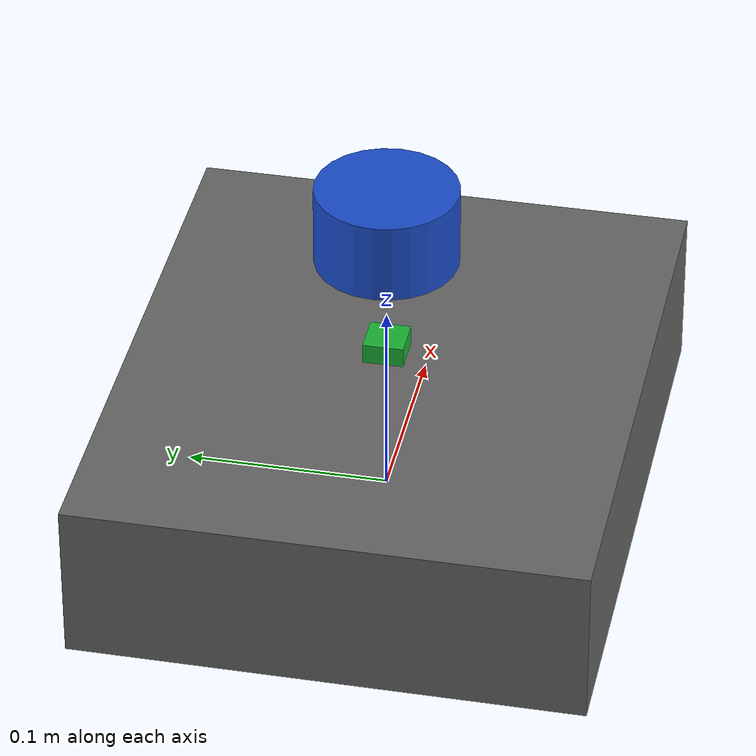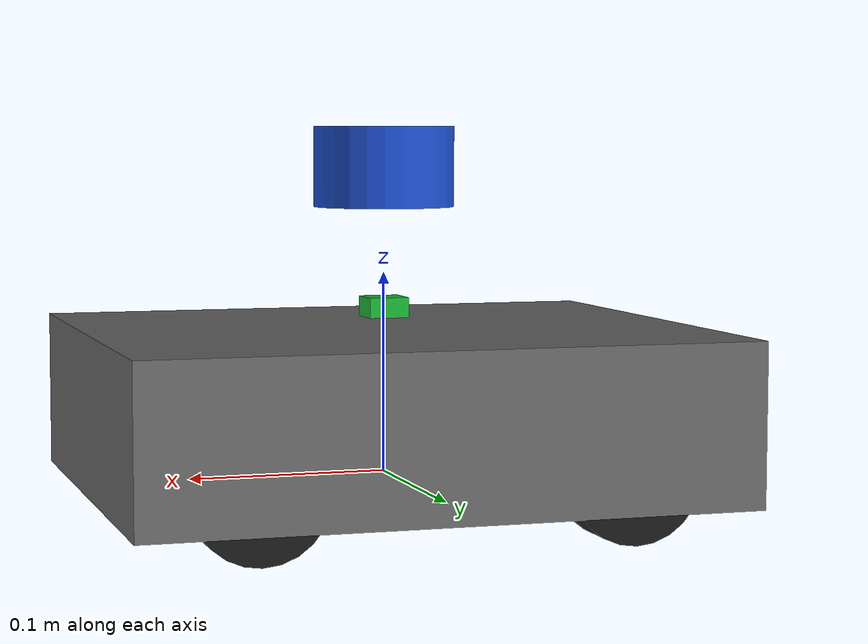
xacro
<?xml version="1.0"?>
<robot xmlns:xacro="http://www.ros.org/wiki/xacro" name="agv">

  <!-- Approximate chassis dimensions (meters) — adjust to your build -->
  <xacro:property name="base_length" value="0.30"/>
  <xacro:property name="base_width" value="0.25"/>
  <xacro:property name="base_height" value="0.08"/>
  <xacro:property name="wheel_radius" value="0.033"/>
  <xacro:property name="wheel_width" value="0.025"/>
  <xacro:property name="track_width" value="0.20"/>
  <xacro:property name="wheelbase" value="0.18"/>

  <!-- Lidar mount relative to base_link (measure on your robot) -->
  <xacro:property name="laser_x" value="0.0"/>
  <xacro:property name="laser_y" value="0.0"/>
  <xacro:property name="laser_z" value="0.12"/>
  <xacro:property name="laser_yaw" value="0.0"/>

  <!-- BNO055 mount relative to base_link -->
  <xacro:property name="imu_x" value="0.0"/>
  <xacro:property name="imu_y" value="0.0"/>
  <xacro:property name="imu_z" value="0.05"/>

  <link name="base_footprint"/>

  <joint name="base_joint" type="fixed">
    <parent link="base_footprint"/>
    <child link="base_link"/>
    <origin xyz="0 0 ${wheel_radius}" rpy="0 0 0"/>
  </joint>

  <link name="base_link">
    <visual>
      <origin xyz="0 0 0" rpy="0 0 0"/>
      <geometry>
        <box size="${base_length} ${base_width} ${base_height}"/>
      </geometry>
      <material name="grey">
        <color rgba="0.4 0.4 0.4 1.0"/>
      </material>
    </visual>
    <collision>
      <origin xyz="0 0 0" rpy="0 0 0"/>
      <geometry>
        <box size="${base_length} ${base_width} ${base_height}"/>
      </geometry>
    </collision>
    <inertial>
      <mass value="2.0"/>
      <origin xyz="0 0 0"/>
      <inertia ixx="0.02" ixy="0" ixz="0" iyy="0.03" iyz="0" izz="0.04"/>
    </inertial>
  </link>

  <!-- Wheel visual placeholders (fixed; open-loop, no joint control) -->
  <xacro:macro name="wheel" params="prefix x y">
    <link name="${prefix}_wheel">
      <visual>
        <origin xyz="0 0 0" rpy="1.5708 0 0"/>
        <geometry>
          <cylinder radius="${wheel_radius}" length="${wheel_width}"/>
        </geometry>
        <material name="black">
          <color rgba="0.1 0.1 0.1 1.0"/>
        </material>
      </visual>
      <collision>
        <origin xyz="0 0 0" rpy="1.5708 0 0"/>
        <geometry>
          <cylinder radius="${wheel_radius}" length="${wheel_width}"/>
        </geometry>
      </collision>
      <inertial>
        <mass value="0.05"/>
        <inertia ixx="0.0001" ixy="0" ixz="0" iyy="0.0001" iyz="0" izz="0.0001"/>
      </inertial>
    </link>
    <joint name="${prefix}_wheel_joint" type="fixed">
      <parent link="base_link"/>
      <child link="${prefix}_wheel"/>
      <origin xyz="${x} ${y} ${-wheel_radius + 0.01}" rpy="0 0 0"/>
    </joint>
  </xacro:macro>

  <xacro:wheel prefix="fl" x="${wheelbase/2}" y="${track_width/2}"/>
  <xacro:wheel prefix="fr" x="${wheelbase/2}" y="${-track_width/2}"/>
  <xacro:wheel prefix="rl" x="${-wheelbase/2}" y="${track_width/2}"/>
  <xacro:wheel prefix="rr" x="${-wheelbase/2}" y="${-track_width/2}"/>

  <!-- YDLIDAR -->
  <link name="laser_frame">
    <visual>
      <geometry>
        <cylinder radius="0.035" length="0.04"/>
      </geometry>
      <material name="blue">
        <color rgba="0.1 0.3 0.8 1.0"/>
      </material>
    </visual>
  </link>
  <joint name="laser_joint" type="fixed">
    <parent link="base_link"/>
    <child link="laser_frame"/>
    <origin xyz="${laser_x} ${laser_y} ${laser_z}" rpy="0 0 ${laser_yaw}"/>
  </joint>

  <!-- BNO055 -->
  <link name="imu_link">
    <visual>
      <geometry>
        <box size="0.02 0.02 0.01"/>
      </geometry>
      <material name="green">
        <color rgba="0.1 0.7 0.2 1.0"/>
      </material>
    </visual>
  </link>
  <joint name="imu_joint" type="fixed">
    <parent link="base_link"/>
    <child link="imu_link"/>
    <origin xyz="${imu_x} ${imu_y} ${imu_z}" rpy="0 0 0"/>
  </joint>

</robot>
